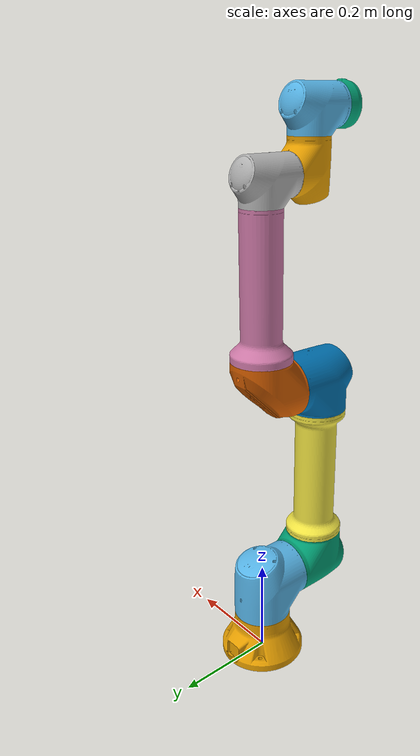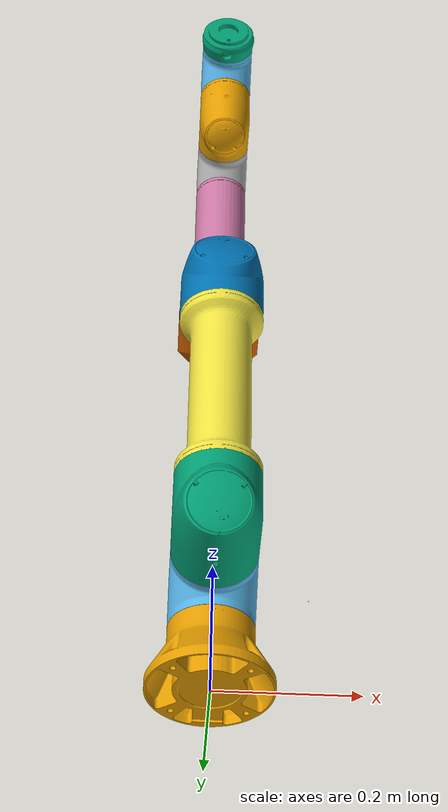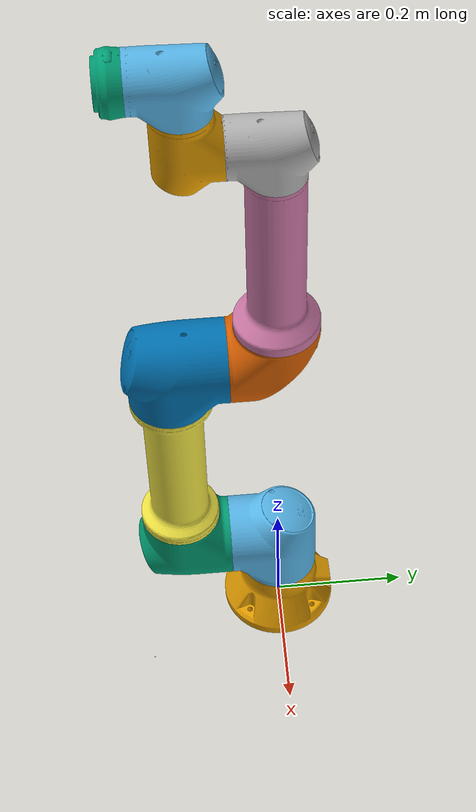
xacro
<?xml version="1.0" encoding="utf-8" ?>

<robot name="rb5">
    <material name="red">
        <color rgba="1 0 0 1" />
    </material>
<!--    ======================= Links =========================-->
<!--     Body Base-->
    <link name="Body_Base">
        <visual>
            <origin rpy="0 0 -1.57079632679" xyz="0 0 0" />
            <geometry>
                <mesh filename="_1_base.stl" scale="0.001 0.001 0.001"/>
            </geometry>

        </visual>
        <collision>
            <origin rpy="0 0 -1.57079632679" xyz="0 0 0" />
            <geometry>
                <mesh filename="./_1_base.stl" scale="0.001 0.001 0.001"/>
            </geometry>
        </collision>
        <inertial>
            <mass value="2."/>
            <inertia ixx="1.0" iyy="1.0" izz="1.0" ixy="0.0" ixz="0.0" iyz="0.0"/>
        </inertial>
    </link>
     Body Module 1
    <link name="Body_Module_1">
        <visual>
            <origin rpy="0 0 -1.57079632679" xyz="0 0 0" />
            <geometry>
                <mesh filename="./_2_module_1.stl" scale="0.001 0.001 0.001"/>
            </geometry>

        </visual>
        <collision>
            <origin rpy="0 0 -1.57079632679" xyz="0 0 0" />
            <geometry>
                <mesh filename="./_2_module_1.stl" scale="0.001 0.001 0.001"/>
            </geometry>
        </collision>
        <inertial>
            <mass value="2."/>
            <inertia ixx="1.0" iyy="1.0" izz="1.0" ixy="0.0" ixz="0.0" iyz="0.0"/>
        </inertial>
    </link>
    <!-- Body Module 2 -->
    <link name="Body_Module_2">
        <visual>
            <origin rpy="0 0 -1.57079632679" xyz="0 0 -0.1692" />
            <geometry>
                <mesh filename="./_3_module_2.stl" scale="0.001 0.001 0.001"/>
            </geometry>

        </visual>
        <collision>
            <origin rpy="0 0 -1.57079632679" xyz="0 0 -0.1692" />
            <geometry>
                <mesh filename="./_3_module_2.stl" scale="0.001 0.001 0.001"/>
            </geometry>
        </collision>
        <inertial>
            <mass value="2."/>
            <inertia ixx="1.0" iyy="1.0" izz="1.0" ixy="0.0" ixz="0.0" iyz="0.0"/>
        </inertial>
    </link>
    <!-- Body Pipe 1 -->
    <link name="Body_Pipe_1">
        <visual>
            <origin rpy="0 0 -1.57079632679" xyz="0 0 -0.1692" />
            <geometry>
                <mesh filename="./_4_pipe_1.stl" scale="0.001 0.001 0.001"/>
            </geometry>

        </visual>
        <collision>
            <origin rpy="0 0 -1.57079632679" xyz="0 0 -0.1692" />
            <geometry>
                <mesh filename="./_4_pipe_1.stl" scale="0.001 0.001 0.001"/>
            </geometry>
        </collision>
        <inertial>
            <mass value="2."/>
            <inertia ixx="1.0" iyy="1.0" izz="1.0" ixy="0.0" ixz="0.0" iyz="0.0"/>
        </inertial>
    </link>
    <!-- Body Module 3 -->
    <link name="Body_Module_3">
        <visual>
            <origin rpy="0 0 -1.57079632679" xyz="0 0 -0.1692" />
            <geometry>
                <mesh filename="./_5_module_3.stl" scale="0.001 0.001 0.001"/>
            </geometry>

        </visual>
        <collision>
            <origin rpy="0 0 -1.57079632679" xyz="0 0 -0.1692" />
            <geometry>
                <mesh filename="./_5_module_3.stl" scale="0.001 0.001 0.001"/>
            </geometry>
        </collision>
        <inertial>
            <mass value="2."/>
            <inertia ixx="1.0" iyy="1.0" izz="1.0" ixy="0.0" ixz="0.0" iyz="0.0"/>
        </inertial>
    </link>
    <!-- Body Module Dummy -->
    <link name="Body_Module_Dummy">
        <visual>
            <origin rpy="0 0 -1.57079632679" xyz="0 0 -0.5942" />
            <geometry>
                <mesh filename="./_6_module_dummy.stl" scale="0.001 0.001 0.001"/>
            </geometry>

        </visual>
        <collision>
            <origin rpy="0 0 -1.57079632679" xyz="0 0 -0.5942" />
            <geometry>
                <mesh filename="./_6_module_dummy.stl" scale="0.001 0.001 0.001"/>
            </geometry>
        </collision>
        <inertial>
            <mass value="2."/>
            <inertia ixx="1.0" iyy="1.0" izz="1.0" ixy="0.0" ixz="0.0" iyz="0.0"/>
        </inertial>
    </link>
    <!-- Body Pipe 2 -->
    <link name="Body_Pipe_2">
        <visual>
            <origin rpy="0 0 -1.57079632679" xyz="0 0 -0.5942" />
            <geometry>
                <mesh filename="_7_pipe_2.stl" scale="0.001 0.001 0.001"/>
            </geometry>

        </visual>
        <collision>
            <origin rpy="0 0 -1.57079632679" xyz="0 0 -0.5942" />
            <geometry>
                <mesh filename="_7_pipe_2.stl" scale="0.001 0.001 0.001"/>
            </geometry>
        </collision>
        <inertial>
            <mass value="2."/>
            <inertia ixx="1.0" iyy="1.0" izz="1.0" ixy="0.0" ixz="0.0" iyz="0.0"/>
        </inertial>
    </link>
    <!-- Body Module 4 -->
    <link name="Body_Module_4">
        <visual>
            <origin rpy="0 0 -1.57079632679" xyz="0 0 -0.5942" />
            <geometry>
                <mesh filename="./_8_module_4.stl" scale="0.001 0.001 0.001"/>
            </geometry>

        </visual>
        <collision>
            <origin rpy="0 0 -1.57079632679" xyz="0 0 -0.5942" />
            <geometry>
                <mesh filename="./_8_module_4.stl" scale="0.001 0.001 0.001"/>
            </geometry>
        </collision>
        <inertial>
            <mass value="2."/>
            <inertia ixx="1.0" iyy="1.0" izz="1.0" ixy="0.0" ixz="0.0" iyz="0.0"/>
        </inertial>
    </link>
    <!-- Body Module 5 -->
    <link name="Body_Module_5">
        <visual>
            <origin rpy="0 0 -1.57079632679" xyz="0 0 -0.9862" />
            <geometry>
                <mesh filename="./_9_module_5.stl" scale="0.001 0.001 0.001"/>
            </geometry>

        </visual>
        <collision>
            <origin rpy="0 0 -1.57079632679" xyz="0 0 -0.9862" />
            <geometry>
                <mesh filename="./_9_module_5.stl" scale="0.001 0.001 0.001"/>
            </geometry>
        </collision>
        <inertial>
            <mass value="2."/>
            <inertia ixx="1.0" iyy="1.0" izz="1.0" ixy="0.0" ixz="0.0" iyz="0.0"/>
        </inertial>
    </link>
    <!-- Body Module 6 -->
    <link name="Body_Module_6">
        <visual>
            <origin rpy="0 0 -1.57079632679" xyz="0 0.1107 -0.9862" />
            <geometry>
                <mesh filename="./_10_module_6.stl" scale="0.001 0.001 0.001"/>
            </geometry>

        </visual>
        <collision>
            <origin rpy="0 0 -1.57079632679" xyz="0 0.1107 -0.9862" />
            <geometry>
                <mesh filename="./_10_module_6.stl" scale="0.001 0.001 0.001"/>
            </geometry>
        </collision>
        <inertial>
            <mass value="2."/>
            <inertia ixx="1.0" iyy="1.0" izz="1.0" ixy="0.0" ixz="0.0" iyz="0.0"/>
        </inertial>
    </link>
    <!-- Body Tool Flange -->
    <link name="Body_Tool_Flange">
        <visual>
            <origin rpy="0 0 -1.57079632679" xyz="0 0.1107 -1.0969" />
            <geometry>
                <mesh filename="./_11_tool_flange.stl" scale="0.001 0.001 0.001"/>
            </geometry>

        </visual>
        <collision>
            <origin rpy="0 0 -1.57079632679" xyz="0 0.1107 -1.0969" />
            <geometry>
                <mesh filename="./_11_tool_flange.stl" scale="0.001 0.001 0.001"/>
            </geometry>
        </collision>
        <inertial>
            <mass value="1."/>
            <inertia ixx="1.0" iyy="1.0" izz="1.0" ixy="0.0" ixz="0.0" iyz="0.0"/>
        </inertial>
    </link>
    <link name="Tool_Center_Point">
        <visual>
            <origin rpy="0 0 0" xyz="0.1107 0 -1.0969" />
            <geometry>
                <box size="0.001 0.001 0.001" />
            </geometry>

        </visual>
    </link>

    <!--======================= Joints =========================-->
    <joint name="base_joint" type="revolute">
        <parent link="Body_Base" />
        <child link="Body_Module_1" />
        <origin rpy="0 0 0" xyz="0 0 0" />
        <axis xyz="0 0 1" />
        <limit effort="10.0" lower="-6.28318530718" upper="6.28318530718" velocity="2.5" />
    </joint>
    <joint name="shoulder" type="revolute">
        <parent link="Body_Module_1" />
        <child link="Body_Module_2" />
        <origin rpy="0 0 0" xyz="0 0 0.1692" />
        <axis xyz="0 1 0" />
        <limit effort="10.0" lower="-6.28318530718" upper="6.28318530718" velocity="2.5" />
    </joint>
    <joint name="module2_to_pipe1" type="fixed">
        <parent link="Body_Module_2" />
        <child link="Body_Pipe_1" />
        <origin rpy="0 0 0" xyz="0 0 0" />
    </joint>
    <joint name="pipe1_to_module3" type="fixed">
        <parent link="Body_Pipe_1" />
        <child link="Body_Module_3" />
        <origin rpy="0 0 0" xyz="0 0 0" />
    </joint>
    <joint name="elbow" type="revolute">
        <parent link="Body_Module_3" />
        <child link="Body_Module_Dummy" />
        <origin rpy="0 0 0" xyz="0 0 0.425" />
        <axis xyz="0 1 0" />
        <limit effort="10.0" lower="-2.88" upper="2.88" velocity="2.5" />
    </joint>
    <joint name="moduled_to_pipe2" type="fixed">
        <parent link="Body_Module_Dummy" />
        <child link="Body_Pipe_2" />
        <origin rpy="0 0 0" xyz="0 0 0" />
    </joint>
    <joint name="Pipe2_to_Module4" type="fixed">
        <parent link="Body_Pipe_2" />
        <child link="Body_Module_4" />
        <origin rpy="0 0 0" xyz="0 0 0" />
    </joint>
    <joint name="wrist1" type="revolute">
        <parent link="Body_Module_4" />
        <child link="Body_Module_5" />
        <origin rpy="0 0 0" xyz="0 0 0.392" />
        <axis xyz="0 1 0" />
        <limit effort="10.0" lower="-6.28318530718" upper="6.28318530718" velocity="2.5" />
    </joint>
    <joint name="wrist2" type="revolute">
        <parent link="Body_Module_5" />
        <child link="Body_Module_6" />
        <origin rpy="0 0 0" xyz="0 -0.1107 0" />
        <axis xyz="0 0 1" />
        <limit effort="10.0" lower="-6.28318530718" upper="6.28318530718" velocity="2.5" />
    </joint>
    <joint name="wrist3" type="revolute">
        <parent link="Body_Module_6" />
        <child link="Body_Tool_Flange" />
        <origin rpy="0 0 0" xyz="0 0 0.1107" />
        <axis xyz="0 1 0" />
        <limit effort="10.0" lower="-6.28318530718" upper="6.28318530718" velocity="2.5" />
    </joint>
    <joint name="Tool_Flange" type="fixed">
        <parent link="Body_Tool_Flange" />
        <child link="Tool_Center_Point" />
        <origin rpy="0 0 0" xyz="0 -0.0967 0" />
        <axis xyz="0 0 0" />
    </joint>
</robot>
